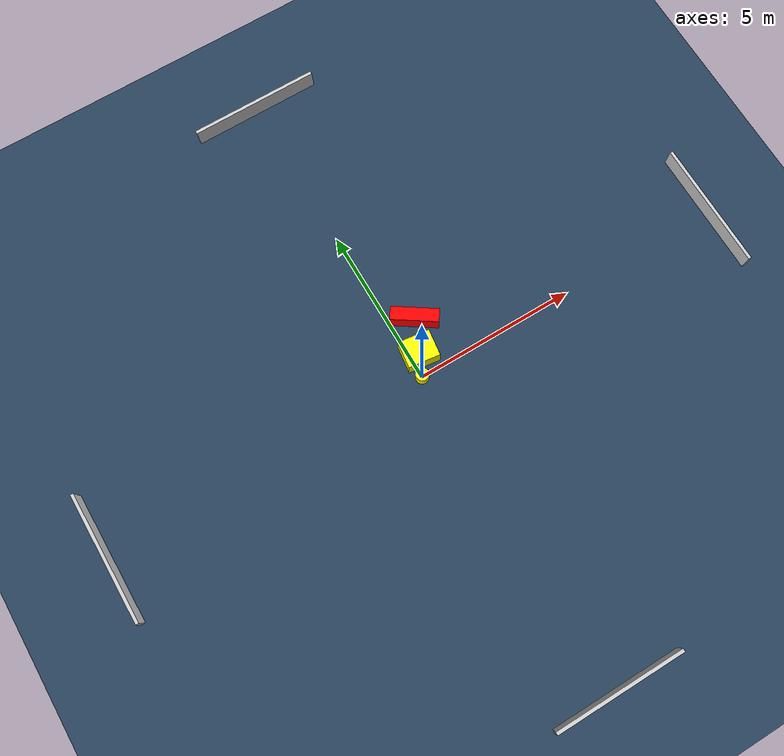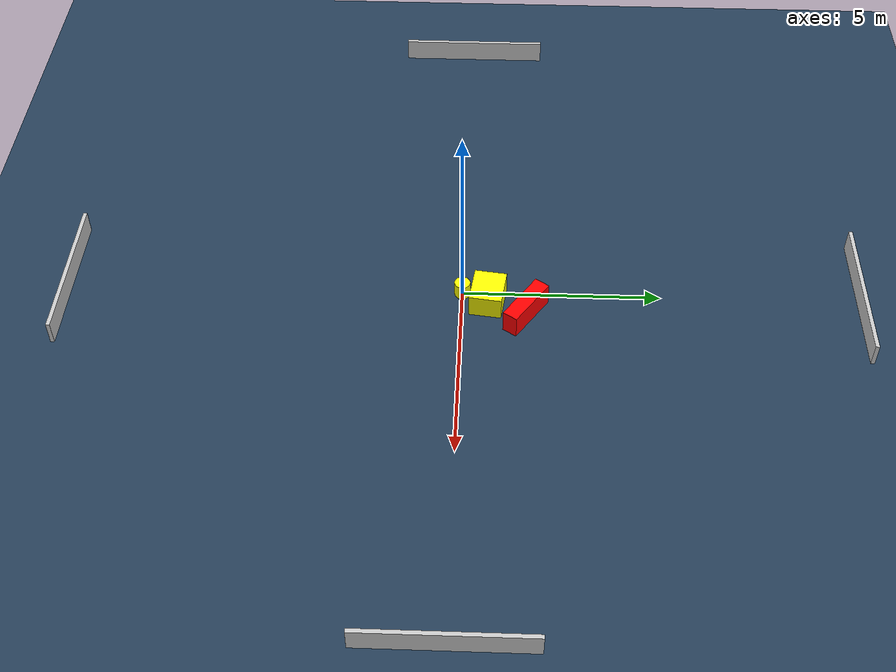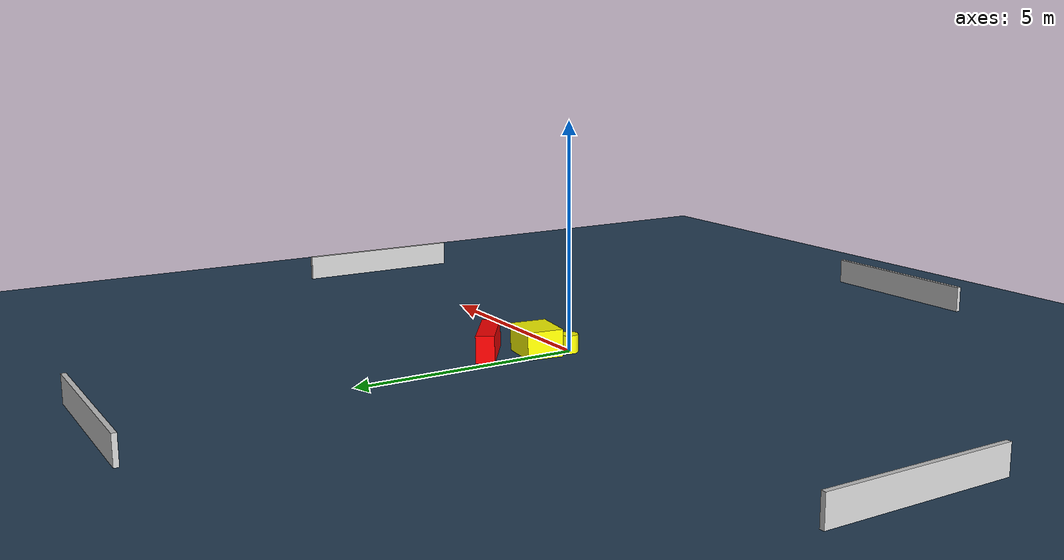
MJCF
<?xml version="1.0" ?>
<mujoco model="generated_environment">
  <option timestep="0.01" integrator="RK4" cone="elliptic"/>
  <default>
    <geom density="1"/>
  </default>
  <asset>
    <texture builtin="gradient" height="3072" name="skybox" rgb1="0.3 0.5 0.7" rgb2="0 0 0" type="skybox" width="512"/>
    <texture builtin="checker" height="300" name="groundplane" rgb1="0.2 0.3 0.4" rgb2="0.1 0.2 0.3" type="2d" width="300"/>
    <material name="groundplane" reflectance="0.2" texrepeat="5 5" texture="groundplane"/>
  </asset>
  <worldbody>
    <light dir="0 0 -1" directional="true" pos="0 0 1.5"/>
    <geom condim="3" friction="0.5 0.005 0.001" material="groundplane" name="floor" pos="0 0 0" size="0 0 0.05" type="plane"/>
    <body name="walls">
      <geom name="wall_1" condim="4" pos="-10.0 0.0 0.3" rgba="0.800000011920929 0.800000011920929 0.800000011920929 1.0" size="0.05 2.0 0.3" type="box"/>
      <geom name="wall_2" condim="4" pos="10.0 0.0 0.3" rgba="0.800000011920929 0.800000011920929 0.800000011920929 1.0" size="0.05 2.0 0.3" type="box"/>
      <geom name="wall_3" condim="4" pos="0.0 -10.0 0.3" rgba="0.800000011920929 0.800000011920929 0.800000011920929 1.0" size="2.0 0.05 0.3" type="box"/>
      <geom name="wall_4" condim="4" pos="0.0 10.0 0.3" rgba="0.800000011920929 0.800000011920929 0.800000011920929 1.0" size="2.0 0.05 0.3" type="box"/>
    </body>
    <body name="robot">
      <joint name="joint_x" type="slide" pos="0 0 0" axis="1 0 0"/>
      <joint name="joint_y" type="slide" pos="0 0 0" axis="0 1 0"/>
      <geom name="robot" type="cylinder" pos="0.0 0.0 0.2" size="0.2 0.2 0.0" mass="5.0" friction="1.0 0.005 0.0001" condim="4" rgba="1.0 1.0 0.0 1.0"/>
    </body>
    <body name="obstacle_1_movable">
      <geom name="obstacle_1_movable" condim="4" pos="0.2795899413263149 0.6505057948333075 0.3" euler="0 0 262.4629236320159" friction="0.0 0.005 0.001" rgba="1.0 1.0 0.0 1.0" size="0.4076232432407673 0.487645645393778 0.3" type="box" mass="0.1"/>
      <joint type="free"/>
    </body>
    <body name="obstacle_2_static">
      <geom name="obstacle_2_static" condim="4" pos="0.7100040126130442 1.6033121016084613 0.3" euler="0 0 55.944282248190895" friction="0.0 0.005 0.001" rgba="1.0 0.0 0.0 1.0" size="0.20103952236816122 0.7145708107654258 0.3" type="box"/>
    </body>
  </worldbody>
  <actuator>
    <motor name="actuator_x" joint="joint_x" gear="1" ctrlrange="-1 1"/>
    <motor name="actuator_y" joint="joint_y" gear="1" ctrlrange="-1 1"/>
  </actuator>
</mujoco>
